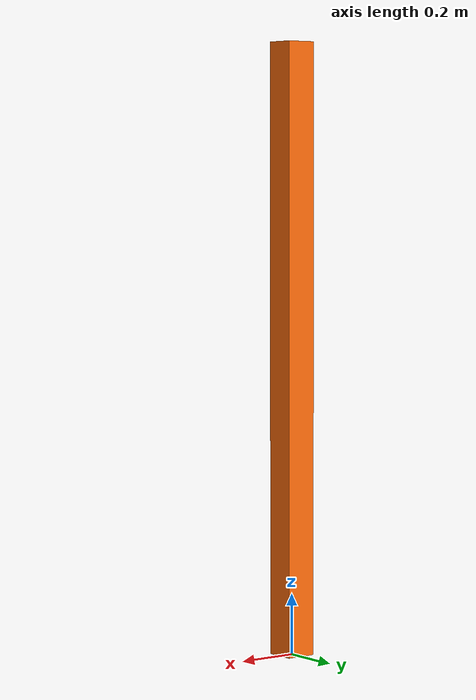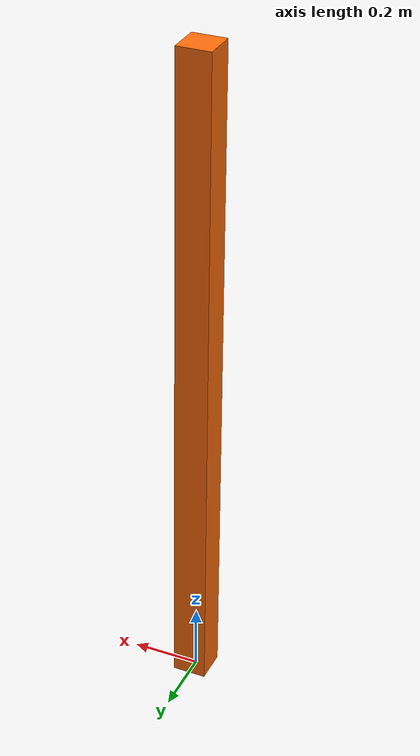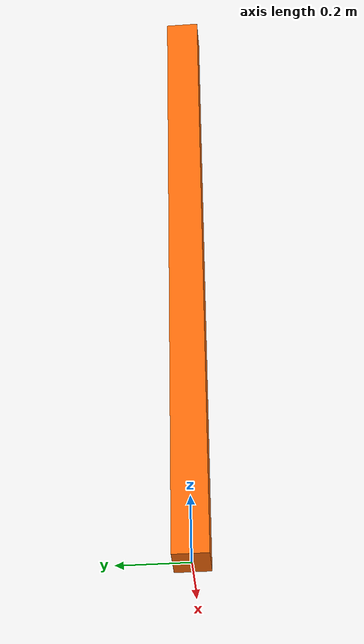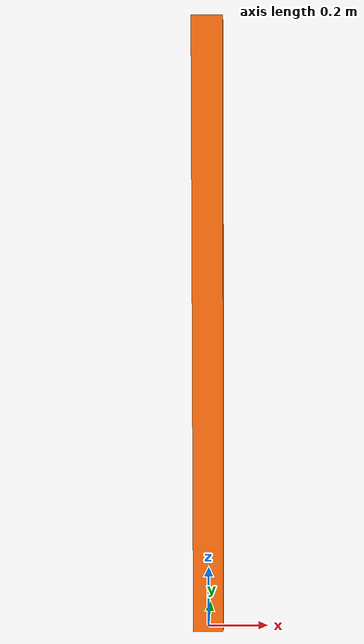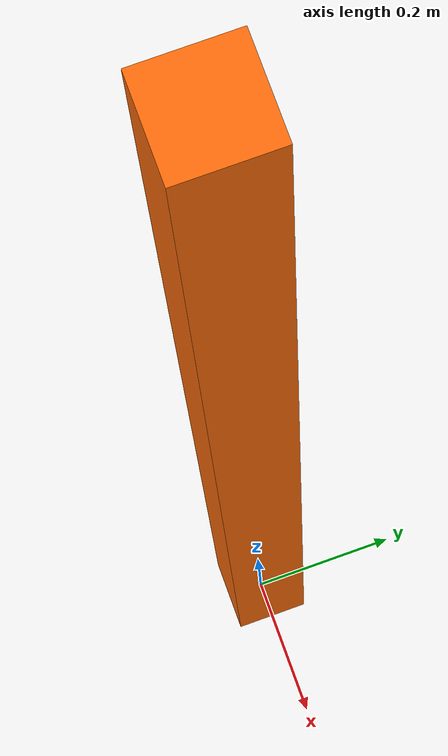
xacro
<?xml version="1.0"?>

<robot name="pvcchair" xmlns:xacro="http://www.ros.org/wiki/xacro">

  <!-- constants -->
  <xacro:property name="PI" value="3.1415926535897931"/>
  <xacro:property name="mass" value="1" /> <!-- arbitrary value for mass -->
  <xacro:property name="width" value="0.1" /> <!-- Square dimensions (widthxwidth) of beams -->
  <xacro:property name="height1" value="2" /> <!-- Link 1 -->
  <xacro:property name="height2" value="1" /> <!-- Link 2 -->
  <xacro:property name="height3" value="1" /> <!-- Link 3 -->

  <!-- Import all Gazebo-customization elements, including Gazebo colors -->
  <xacro:include filename="$(find pvcchair_description)/urdf/old/pvcchair.gazebo" />
  <!-- Import Rviz colors -->
  <xacro:include filename="$(find pvcchair_description)/urdf/old/materials.xacro" />

  <!-- Used for fixing robot to Gazebo 'base_link' -->
  <link name="world" />

  <joint name="fixed" type="fixed">
    <parent link="world" />
    <child link="link1" />
  </joint>

  <!-- base link -->
  <link name="link1">
    <collision>
      <origin xyz="0 0 ${height1/2}" rpy="0 0 0"/>
      <geometry>
      <box size="${width} ${width} ${height1}"/>
      </geometry>
    </collision>

    <visual>
      <origin xyz="0 0 ${height1/2}" rpy="0 0 0"/>
      <geometry>
      <box size="${width} ${width} ${height1}"/>
      </geometry>
      <material name="orange"/>
    </visual>

    <inertial>
      <origin xyz="0 0 ${height1/2}" rpy="0 0 0"/>
      <mass value="${mass}"/>
      <inertia
        ixx="${mass / 12.0 * (width*width + height1*height1)}" ixy="0.0" ixz="0.0"
        iyy="${mass / 12.0 * (height1*height1 + width*width)}" iyz="0.0"
        izz="${mass / 12.0 * (width*width + width*width)}"/>
    </inertial>
  </link>

</robot>

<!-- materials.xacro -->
<robot>

  <material name="black">
    <color rgba="0.0 0.0 0.0 1.0"/>
  </material>

  <material name="blue">
    <color rgba="0.0 0.0 0.8 1.0"/>
  </material>

  <material name="green">
    <color rgba="0.0 0.8 0.0 1.0"/>
  </material>

  <material name="grey">
    <color rgba="0.2 0.2 0.2 1.0"/>
  </material>

  <material name="orange">
    <color rgba="${255/255} ${108/255} ${10/255} 1.0"/>
  </material>

  <material name="brown">
    <color rgba="${222/255} ${207/255} ${195/255} 1.0"/>
  </material>

  <material name="red">
    <color rgba="0.8 0.0 0.0 1.0"/>
  </material>

  <material name="white">
    <color rgba="1.0 1.0 1.0 1.0"/>
  </material>

</robot>
